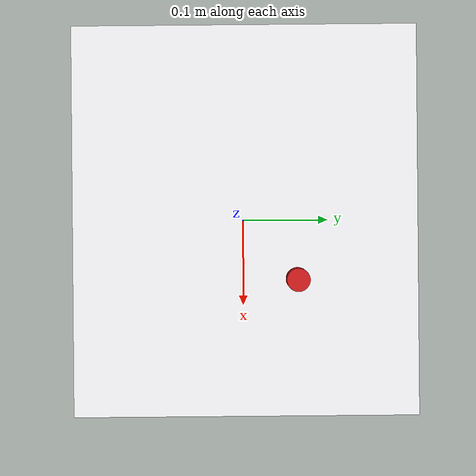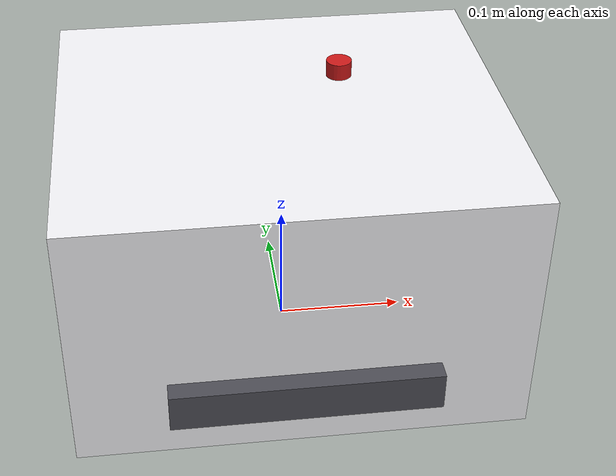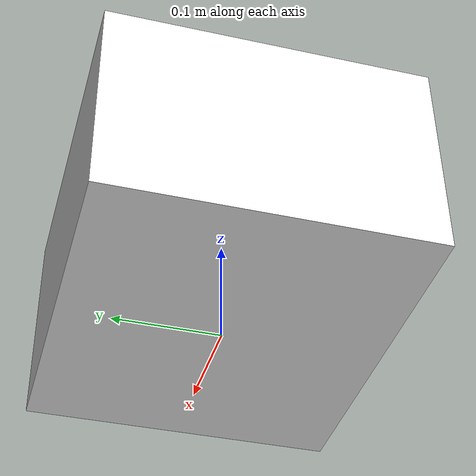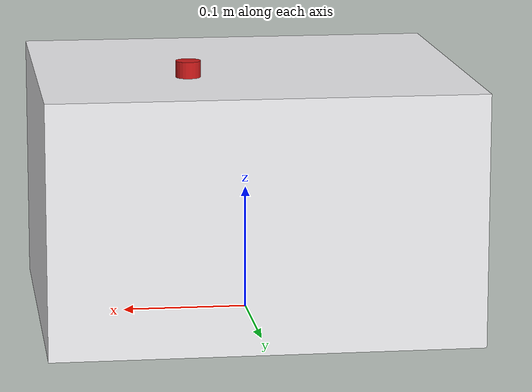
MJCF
<?xml version="1.0" encoding="utf-8"?>
<mujoco model="real_lab_emory_university_sequencer">
  <compiler angle="radian" autolimits="true"/>
  <default>
    <default class="body"><geom contype="1" conaffinity="1"/></default>
  </default>
  <worldbody>
    <body name="base">
      <geom type="box" size="0.17 0.15 0.1" pos="0 0 0.1" rgba="0.95 0.95 0.96 1" class="body"/>
      <geom type="box" size="0.051000000000000004 0.0075 0.025" pos="-0.085 -0.135 0.15000000000000002" rgba="0.1 0.3 0.8 1" class="body"/>
      <geom type="cylinder" size="0.01 0.008" pos="0.051000000000000004 0.045 0.20500000000000002" rgba="0.8 0.1 0.1 1" class="body"/>
      <body name="sample_drawer" pos="0 -0.15 0.05">
        <joint name="sample_drawer_joint" type="slide" axis="0 1 0" range="0 0.1" damping="1.2" frictionloss="0.6"/>
  <geom type="box" size="0.1 0.015 0.015" pos="0 0 0" rgba="0.3 0.3 0.33 1" class="body"/>
      </body>
    </body>
  </worldbody>
</mujoco>
